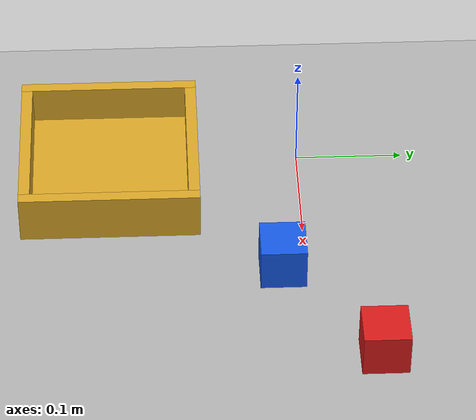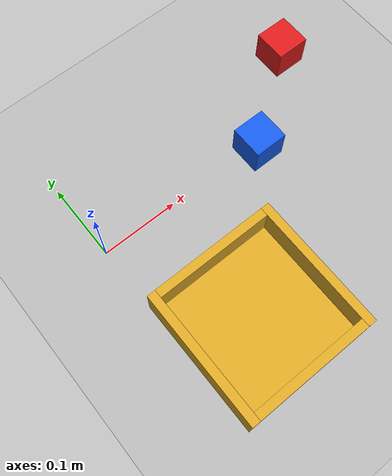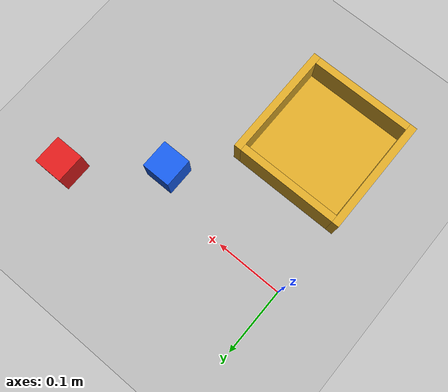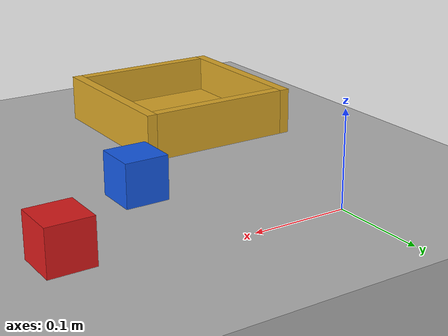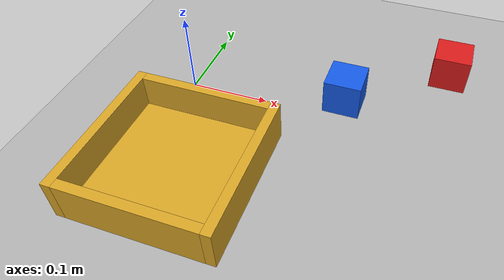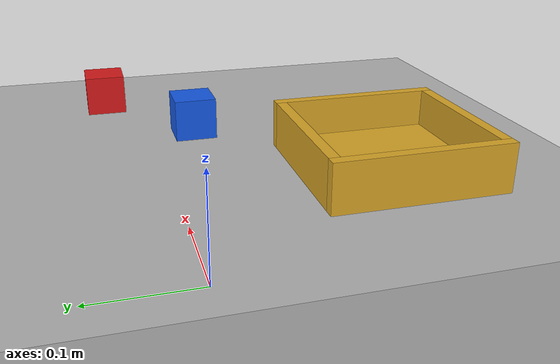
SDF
<sdf version="1.7">
  <world name="physical_delivery">
    <gravity>0 0 -9.8</gravity>
    <physics type="ode">
      <max_step_size>0.001</max_step_size>
      <real_time_update_rate>1000</real_time_update_rate>
      <real_time_factor>1.0</real_time_factor>
      <ode>
        <solver>
          <type>quick</type>
          <iters>100</iters>
        </solver>
        <constraints>
          <cfm>0.000001</cfm>
          <erp>0.2</erp>
        </constraints>
      </ode>
    </physics>
    <model name="table">
      <static>true</static>
      <pose>0 0 0 0 0 0</pose>
      <link name="base_link">
        <collision name="table_collision">
          <geometry>
            <box>
              <size>3.0 2.0 0.1</size>
            </box>
          </geometry>
        </collision>
        <visual name="table_visual">
          <geometry>
            <box>
              <size>3.0 2.0 0.1</size>
            </box>
          </geometry>
          <material>
            <ambient>0.7 0.7 0.7 1</ambient>
            <diffuse>0.7 0.7 0.7 1</diffuse>
          </material>
        </visual>
      </link>
    </model>
    <model name="camera_mount">
      <static>true</static>
      <pose>0.55 0.15 1.4 0 1.5708 0</pose>
      <link name="camera_link">
        <sensor type="camera" name="color_camera">
          <always_on>true</always_on>
          <update_rate>10</update_rate>
          <visualize>true</visualize>
          <camera name="color">
            <horizontal_fov>1.3962634</horizontal_fov>
            <image>
              <width>640</width>
              <height>480</height>
              <format>R8G8B8</format>
            </image>
            <clip>
              <near>0.02</near>
              <far>10.0</far>
            </clip>
          </camera>
          <plugin name="camera_controller" filename="libgazebo_ros_camera.so">
            <ros>
              <namespace>/camera</namespace>
              <remapping>image_raw:=color/image_raw</remapping>
              <remapping>camera_info:=color/camera_info</remapping>
            </ros>
            <camera_name>color</camera_name>
            <frame_name>camera_link</frame_name>
          </plugin>
        </sensor>
      </link>
    </model>
    <plugin name="gazebo_ros_state" filename="libgazebo_ros_state.so">
      <ros>
        <namespace>/gazebo</namespace>
      </ros>
    </plugin>
    <scene>
      <ambient>.45 .45 .45 1</ambient>
      <background>.14 .17 .21 1</background>
    </scene>
    <light name="task_light" type="directional">
      <pose>0 0 2 0 0 0</pose>
      <diffuse>.6 .6 .6 1</diffuse>
      <direction>-.2 .2 -1</direction>
    </light>
    <model name="target_blue_00">
      <pose>0.205 -0.025 0.071 0 0 0</pose>
      <link name="link">
        <inertial>
          <mass>0.03</mass>
          <inertia>
            <ixx>8e-06</ixx>
            <iyy>8e-06</iyy>
            <izz>8e-06</izz>
          </inertia>
        </inertial>
        <collision name="box_collision">
          <geometry>
            <box>
              <size>0.04 0.04 0.04</size>
            </box>
          </geometry>
          <surface>
            <friction>
              <ode>
                <mu>1.0</mu>
                <mu2>1.0</mu2>
              </ode>
            </friction>
            <contact>
              <ode>
                <kp>100000</kp>
                <kd>10</kd>
                <max_vel>0.1</max_vel>
                <min_depth>0.0002</min_depth>
              </ode>
            </contact>
          </surface>
        </collision>
        <visual name="visual">
          <geometry>
            <box>
              <size>0.04 0.04 0.04</size>
            </box>
          </geometry>
          <material>
            <ambient>0.08 0.35 0.9 1</ambient>
            <diffuse>0.08 0.35 0.9 1</diffuse>
          </material>
        </visual>
        <sensor name="box_contacts" type="contact">
          <always_on>true</always_on>
          <update_rate>100</update_rate>
          <contact>
            <collision>box_collision</collision>
          </contact>
          <plugin name="box_contact_ros" filename="libgazebo_ros_bumper.so">
            <ros>
              <remapping>bumper_states:=/grasp/contacts</remapping>
            </ros>
            <frame_name>world</frame_name>
          </plugin>
        </sensor>
      </link>
    </model>
    <model name="distractor_red">
      <pose>0.31 0.055 0.071 0 0 0</pose>
      <link name="link">
        <inertial>
          <mass>0.03</mass>
          <inertia>
            <ixx>8e-06</ixx>
            <iyy>8e-06</iyy>
            <izz>8e-06</izz>
          </inertia>
        </inertial>
        <collision name="box_collision">
          <geometry>
            <box>
              <size>0.04 0.04 0.04</size>
            </box>
          </geometry>
          <surface>
            <friction>
              <ode>
                <mu>1.0</mu>
                <mu2>1.0</mu2>
              </ode>
            </friction>
            <contact>
              <ode>
                <kp>100000</kp>
                <kd>10</kd>
                <max_vel>0.1</max_vel>
                <min_depth>0.0002</min_depth>
              </ode>
            </contact>
          </surface>
        </collision>
        <visual name="visual">
          <geometry>
            <box>
              <size>0.04 0.04 0.04</size>
            </box>
          </geometry>
          <material>
            <ambient>0.85 0.1 0.1 1</ambient>
            <diffuse>0.85 0.1 0.1 1</diffuse>
          </material>
        </visual>
      </link>
    </model>
    <model name="delivery_tray">
      <static>true</static>
      <pose>.075 -.175 .05 0 0 0</pose>
      <link name="tray">
        <collision name="floor_collision">
          <pose>0 0 0.005 0 0 0</pose>
          <geometry>
            <box>
              <size>0.15 0.15 0.01</size>
            </box>
          </geometry>
          <surface>
            <friction>
              <ode>
                <mu>1.0</mu>
                <mu2>1.0</mu2>
              </ode>
            </friction>
            <contact>
              <ode>
                <kp>100000</kp>
                <kd>10</kd>
                <max_vel>0.1</max_vel>
                <min_depth>0.0002</min_depth>
              </ode>
            </contact>
          </surface>
        </collision>
        <visual name="floor_visual">
          <pose>0 0 0.005 0 0 0</pose>
          <geometry>
            <box>
              <size>0.15 0.15 0.01</size>
            </box>
          </geometry>
          <material>
            <ambient>.85 .65 .15 1</ambient>
            <diffuse>.85 .65 .15 1</diffuse>
          </material>
        </visual>
        <collision name="left_collision">
          <pose>-0.075 0 0.0225 0 0 0</pose>
          <geometry>
            <box>
              <size>0.01 0.16 0.045</size>
            </box>
          </geometry>
          <surface>
            <friction>
              <ode>
                <mu>1.0</mu>
                <mu2>1.0</mu2>
              </ode>
            </friction>
            <contact>
              <ode>
                <kp>100000</kp>
                <kd>10</kd>
                <max_vel>0.1</max_vel>
                <min_depth>0.0002</min_depth>
              </ode>
            </contact>
          </surface>
        </collision>
        <visual name="left_visual">
          <pose>-0.075 0 0.0225 0 0 0</pose>
          <geometry>
            <box>
              <size>0.01 0.16 0.045</size>
            </box>
          </geometry>
          <material>
            <ambient>.85 .65 .15 1</ambient>
            <diffuse>.85 .65 .15 1</diffuse>
          </material>
        </visual>
        <collision name="right_collision">
          <pose>0.075 0 0.0225 0 0 0</pose>
          <geometry>
            <box>
              <size>0.01 0.16 0.045</size>
            </box>
          </geometry>
          <surface>
            <friction>
              <ode>
                <mu>1.0</mu>
                <mu2>1.0</mu2>
              </ode>
            </friction>
            <contact>
              <ode>
                <kp>100000</kp>
                <kd>10</kd>
                <max_vel>0.1</max_vel>
                <min_depth>0.0002</min_depth>
              </ode>
            </contact>
          </surface>
        </collision>
        <visual name="right_visual">
          <pose>0.075 0 0.0225 0 0 0</pose>
          <geometry>
            <box>
              <size>0.01 0.16 0.045</size>
            </box>
          </geometry>
          <material>
            <ambient>.85 .65 .15 1</ambient>
            <diffuse>.85 .65 .15 1</diffuse>
          </material>
        </visual>
        <collision name="front_collision">
          <pose>0 -0.075 0.0225 0 0 0</pose>
          <geometry>
            <box>
              <size>0.14 0.01 0.045</size>
            </box>
          </geometry>
          <surface>
            <friction>
              <ode>
                <mu>1.0</mu>
                <mu2>1.0</mu2>
              </ode>
            </friction>
            <contact>
              <ode>
                <kp>100000</kp>
                <kd>10</kd>
                <max_vel>0.1</max_vel>
                <min_depth>0.0002</min_depth>
              </ode>
            </contact>
          </surface>
        </collision>
        <visual name="front_visual">
          <pose>0 -0.075 0.0225 0 0 0</pose>
          <geometry>
            <box>
              <size>0.14 0.01 0.045</size>
            </box>
          </geometry>
          <material>
            <ambient>.85 .65 .15 1</ambient>
            <diffuse>.85 .65 .15 1</diffuse>
          </material>
        </visual>
        <collision name="back_collision">
          <pose>0 0.075 0.0225 0 0 0</pose>
          <geometry>
            <box>
              <size>0.14 0.01 0.045</size>
            </box>
          </geometry>
          <surface>
            <friction>
              <ode>
                <mu>1.0</mu>
                <mu2>1.0</mu2>
              </ode>
            </friction>
            <contact>
              <ode>
                <kp>100000</kp>
                <kd>10</kd>
                <max_vel>0.1</max_vel>
                <min_depth>0.0002</min_depth>
              </ode>
            </contact>
          </surface>
        </collision>
        <visual name="back_visual">
          <pose>0 0.075 0.0225 0 0 0</pose>
          <geometry>
            <box>
              <size>0.14 0.01 0.045</size>
            </box>
          </geometry>
          <material>
            <ambient>.85 .65 .15 1</ambient>
            <diffuse>.85 .65 .15 1</diffuse>
          </material>
        </visual>
      </link>
    </model>
    <model name="demo_camera">
      <static>true</static>
      <pose>.66 -.66 .48 0 .45 2.33</pose>
      <link name="camera_link">
        <sensor type="camera" name="demo_camera_sensor">
          <always_on>true</always_on>
          <update_rate>10</update_rate>
          <visualize>true</visualize>
          <camera name="color">
            <horizontal_fov>.95</horizontal_fov>
            <image>
              <width>960</width>
              <height>720</height>
              <format>R8G8B8</format>
            </image>
            <clip>
              <near>0.02</near>
              <far>10.0</far>
            </clip>
          </camera>
          <plugin name="camera_controller" filename="libgazebo_ros_camera.so">
            <ros>
              <namespace>/demo_camera</namespace>
              <remapping>image_raw:=color/image_raw</remapping>
              <remapping>camera_info:=color/camera_info</remapping>
            </ros>
            <camera_name>color</camera_name>
            <frame_name>camera_link</frame_name>
          </plugin>
        </sensor>
      </link>
    </model>
  </world>
</sdf>
